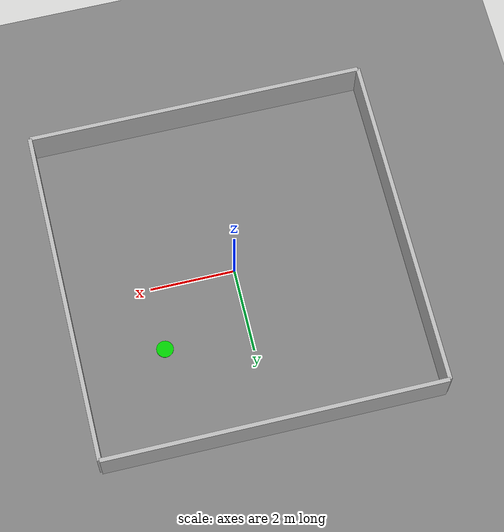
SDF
<?xml version="1.0" ?>
<sdf version="1.9">
  <world name="warehouse">
    <physics name="1ms" type="ignored">
      <max_step_size>0.001</max_step_size>
      <real_time_factor>1.0</real_time_factor>
    </physics>
    <plugin filename="gz-sim-physics-system" name="gz::sim::systems::Physics"/>
    <plugin filename="gz-sim-sensors-system" name="gz::sim::systems::Sensors">
      <render_engine>ogre2</render_engine>
    </plugin>
    <plugin filename="gz-sim-scene-broadcaster-system" name="gz::sim::systems::SceneBroadcaster"/>
    <plugin filename="gz-sim-user-commands-system" name="gz::sim::systems::UserCommands"/>
    <!-- Drives IMU sensors (orientation, angular velocity, linear acceleration). -->
    <plugin filename="gz-sim-imu-system" name="gz::sim::systems::Imu"/>
    <!-- Populates contact sensors (e.g. the robot's bumper). The Contact system lives at
         world scope; the sensor itself is declared on the robot's base link. -->
    <plugin filename="gz-sim-contact-system" name="gz::sim::systems::Contact"/>

    <light type="directional" name="sun">
      <cast_shadows>false</cast_shadows>
      <direction>-0.5 0.1 -0.9</direction>
      <diffuse>1 1 1 1</diffuse>
      <specular>0.2 0.2 0.2 1</specular>
    </light>

    <model name="ground">
      <static>true</static>
      <link name="link">
        <collision name="c"><geometry><plane><normal>0 0 1</normal><size>40 40</size></plane></geometry></collision>
        <visual name="v">
          <geometry><plane><normal>0 0 1</normal><size>40 40</size></plane></geometry>
          <material><ambient>0.3 0.3 0.3 1</ambient><diffuse>0.5 0.5 0.5 1</diffuse></material>
        </visual>
      </link>
    </model>

    <!-- Four walls forming an ~8x8 m room -->
    <model name="wall_north">
      <static>true</static>
      <pose>0 4 0.5 0 0 0</pose>
      <link name="link">
        <collision name="c"><geometry><box><size>8 0.1 1</size></box></geometry></collision>
        <visual name="v"><geometry><box><size>8 0.1 1</size></box></geometry></visual>
      </link>
    </model>
    <model name="wall_south">
      <static>true</static>
      <pose>0 -4 0.5 0 0 0</pose>
      <link name="link">
        <collision name="c"><geometry><box><size>8 0.1 1</size></box></geometry></collision>
        <visual name="v"><geometry><box><size>8 0.1 1</size></box></geometry></visual>
      </link>
    </model>
    <model name="wall_east">
      <static>true</static>
      <pose>4 0 0.5 0 0 0</pose>
      <link name="link">
        <collision name="c"><geometry><box><size>0.1 8 1</size></box></geometry></collision>
        <visual name="v"><geometry><box><size>0.1 8 1</size></box></geometry></visual>
      </link>
    </model>
    <model name="wall_west">
      <static>true</static>
      <pose>-4 0 0.5 0 0 0</pose>
      <link name="link">
        <collision name="c"><geometry><box><size>0.1 8 1</size></box></geometry></collision>
        <visual name="v"><geometry><box><size>0.1 8 1</size></box></geometry></visual>
      </link>
    </model>

    <!-- Goal marker (visual only) at (2, 1.5) — off-axis so reaching it needs a turn -->
    <model name="goal_marker">
      <static>true</static>
      <pose>2 1.5 0.01 0 0 0</pose>
      <link name="link">
        <visual name="v">
          <geometry><cylinder><radius>0.2</radius><length>0.02</length></cylinder></geometry>
          <material><ambient>0 0.6 0 1</ambient><diffuse>0 0.8 0 1</diffuse></material>
        </visual>
      </link>
    </model>

    <!-- No robot and no obstacle box here: the robot is spawned at launch,
         obstacles are spawned per scenario. -->
  </world>
</sdf>
